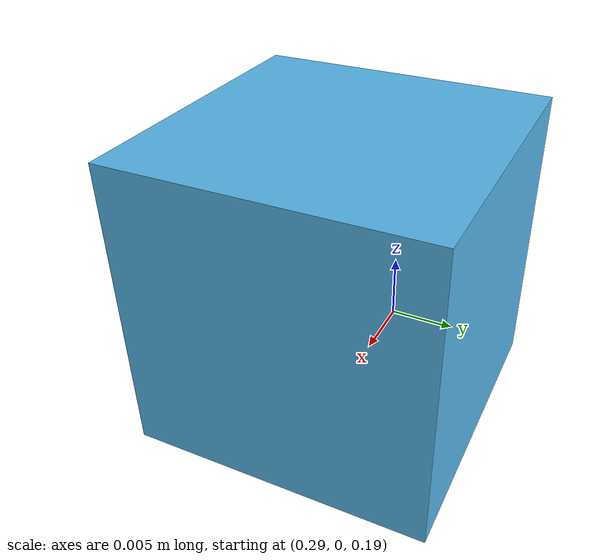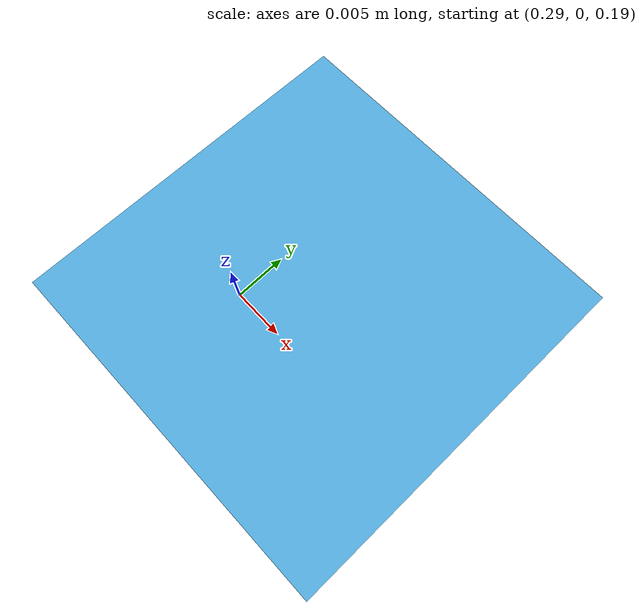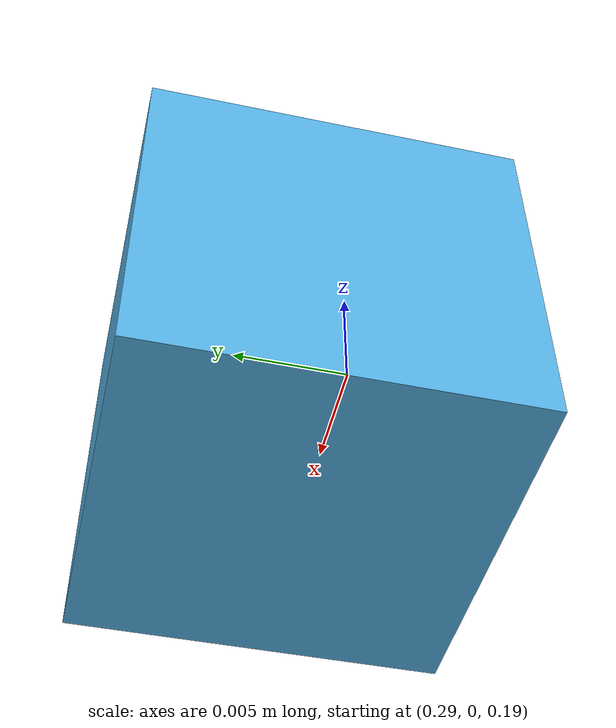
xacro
<?xml version="1.0"?>
<robot name="target" xmlns:xacro="http://ros.org/wiki/xacro">

  <!-- Arguments -->
  <xacro:arg name="prefix" default="" />
  <xacro:arg name="use_sim" default="true" />
  <xacro:arg name="description_package" default="micro_g_description" />

  <!-- Properties -->
  <xacro:property name="description_package" value="$(arg description_package)" />
  <xacro:property name="prefix" value="$(arg prefix)" />
  <xacro:property name="use_sim" value="$(arg use_sim)" />

  <link name="base_footprint" />

  <!-- Imports -->
  <xacro:include filename="$(find ${description_package})/xacro/target/urdf.xacro" />

  <xacro:target_urdf parent="base_footprint" prefix="${prefix}">
    <origin xyz="0.3 0 0.2" rpy="0 0 0" />
  </xacro:target_urdf>

  <!-- Import the Gazebo macro -->
  <xacro:if value="${use_sim}">
    <xacro:include filename="$(find ${description_package})/xacro/target/gazebo.xacro" />
    <xacro:target_gazebo />
  </xacro:if>

</robot>

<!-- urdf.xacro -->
<robot xmlns:xacro="http://ros.org/wiki/xacro">
  <xacro:macro name="target_urdf" params="prefix parent *origin">

    <link name="${prefix}target_link">
      <inertial>
        <mass value="0.0001" />
        <inertia
          ixx="0.0001"
          ixy="0"
          ixz="0"
          iyy="0.0001"
          iyz="0"
          izz="0.0001"
        />
      </inertial>
      <visual>
        <geometry>
          <box size="0.02 0.02 0.02" />
        </geometry>
        <xacro:insert_block name="origin" />
      </visual>
      <collision>
        <geometry>
          <box size="0.02 0.02 0.02" />
        </geometry>
        <xacro:insert_block name="origin" />
      </collision>
    </link>

    <joint name="${prefix}base_footprint_joint" type="fixed">
      <parent link="${prefix}base_footprint" />
      <child link="${prefix}target_link" />
    </joint>

  </xacro:macro>
</robot>
